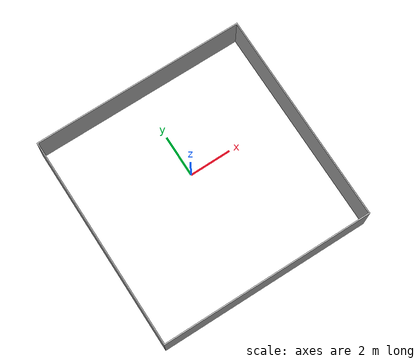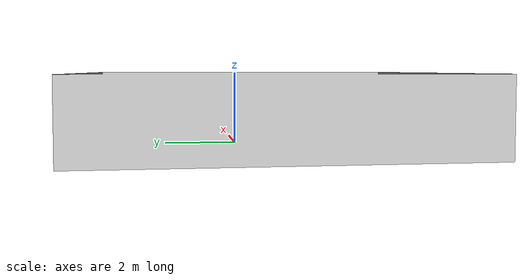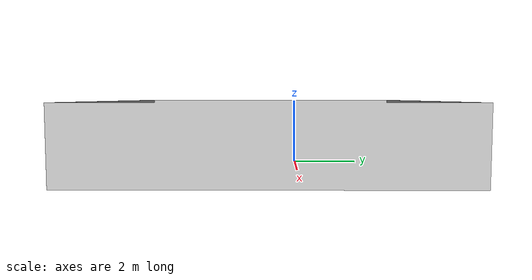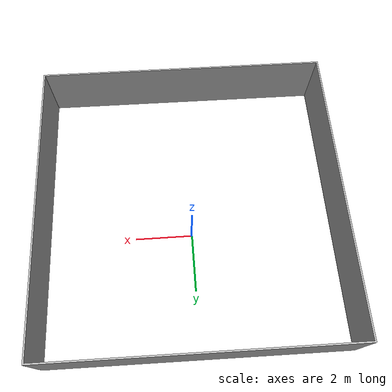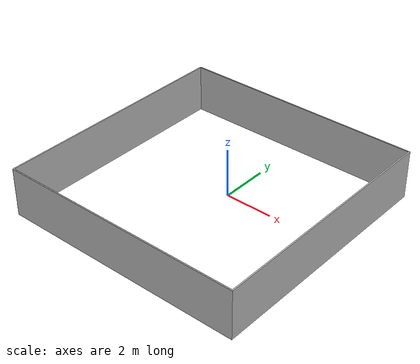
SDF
<?xml version="1.0" ?>
<sdf version="1.4">
  <model name="custom_3">
    <link name="link">
      <inertial>
        <mass>1.0</mass>
        <inertia>
          <ixx>0.0</ixx>
          <ixy>0.0</ixy>
          <ixz>0.0</ixz>
          <iyy>0.0</iyy>
          <iyz>0.0</iyz>
          <izz>0.0</izz>
        </inertia>
      </inertial>
      <collision name="collision">
        <pose>0 0 0 0 0 0</pose>
        <geometry>
          <mesh>
            <uri>model://custom_3/meshes/custom_3.stl</uri>
          </mesh>
        </geometry>
      </collision>
      <visual name="visual">
        <pose>0 0 0 0 0 0</pose>
        <geometry>
          <mesh>
            <uri>model://custom_3/meshes/custom_3.stl</uri>
          </mesh>
        </geometry>
      </visual>
    </link>
  </model>
</sdf>
